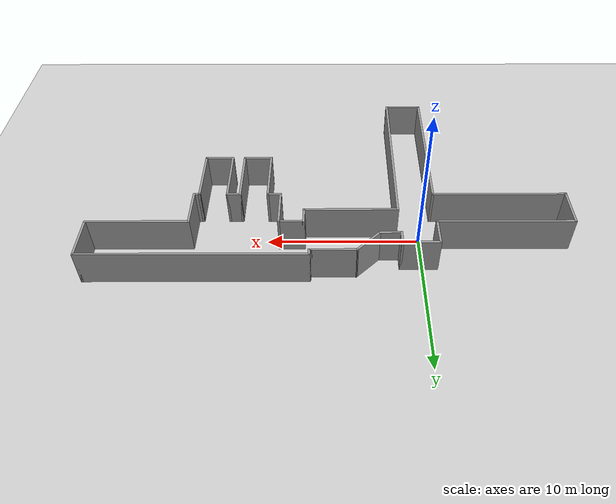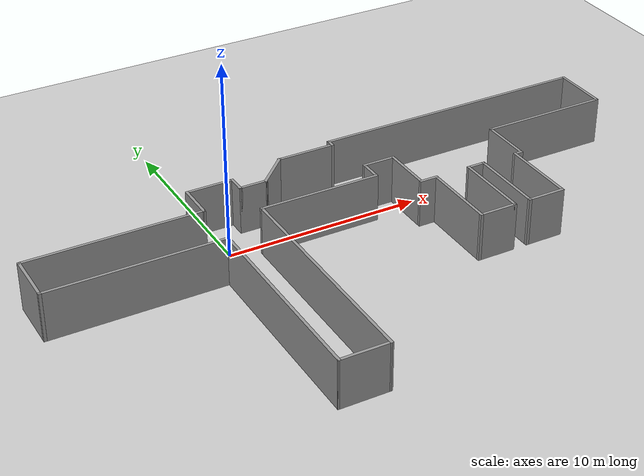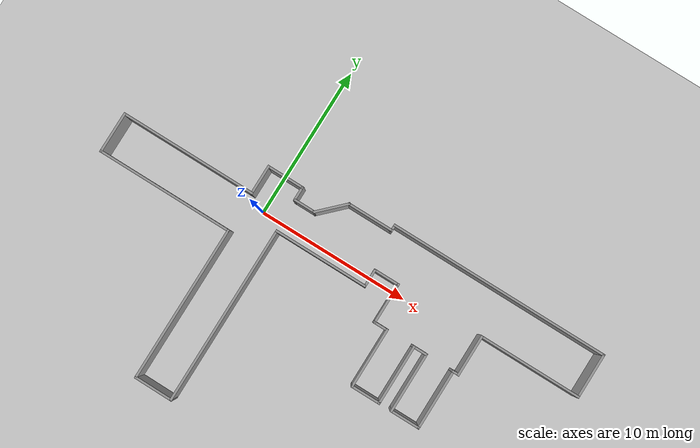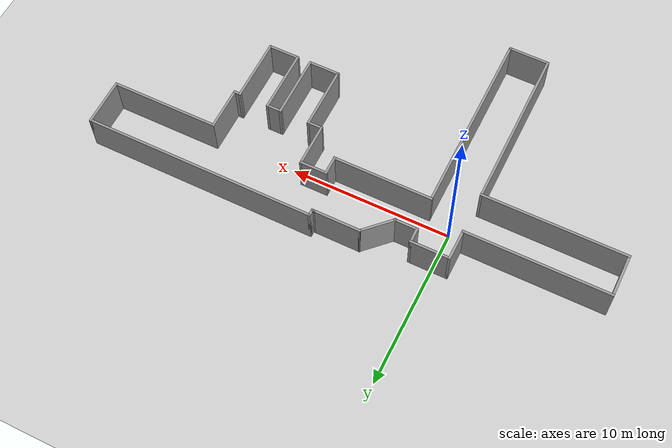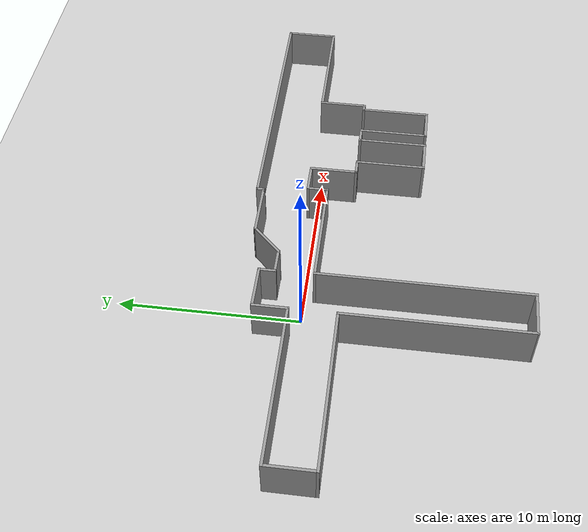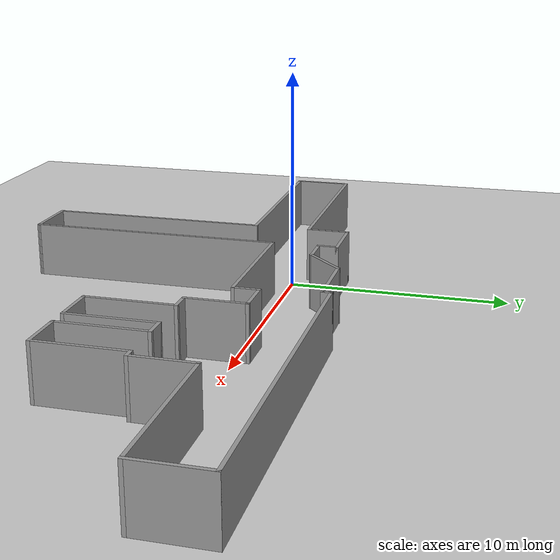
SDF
<sdf version="1.6">
 <world name="default">
  <light name="sun" type="directional">
   <pose>0 0 10 0 -0 0</pose>
   <diffuse>0.8 0.8 0.8 1</diffuse>
   <specular>0.1 0.1 0.1 1</specular>
   <attenuation>
    <range>1000</range>
    <constant>0.9</constant>
    <linear>0.01</linear>
    <quadratic>0.001</quadratic>
   </attenuation>
   <direction>-0.5 0.5 -1</direction>
  </light>
  <model name="ground_plane">
   <static>1</static>
   <link name="link">
    <collision name="collision">
     <geometry><plane><normal>0 0 1</normal><size>100 100</size></plane></geometry>
     <surface><friction><ode><mu>100</mu><mu2>50</mu2></ode></friction></surface>
    </collision>
    <visual name="visual">
     <cast_shadows>0</cast_shadows>
     <geometry><plane><normal>0 0 1</normal><size>100 100</size></plane></geometry>
     <material>
      <script><uri>file://media/materials/scripts/gazebo.material</uri><name>Gazebo/Grey</name></script>
     </material>
    </visual>
   </link>
  </model>
  <gravity>0 0 -9.8</gravity>
  <magnetic_field>6e-06 2.3e-05 -4.2e-05</magnetic_field>
  <atmosphere type="adiabatic"/>
  <physics name="default_physics" default="0" type="ode">
   <max_step_size>0.001</max_step_size>
   <real_time_factor>1</real_time_factor>
   <real_time_update_rate>1000</real_time_update_rate>
  </physics>
  <scene><ambient>0.4 0.4 0.4 1</ambient><background>0.7 0.7 0.7 1</background><shadows>1</shadows></scene>
  <spherical_coordinates>
   <surface_model>EARTH_WGS84</surface_model>
   <latitude_deg>0</latitude_deg>
   <longitude_deg>0</longitude_deg>
   <elevation>0</elevation>
   <heading_deg>0</heading_deg>
  </spherical_coordinates>
  <model name="HospitalHallClosed">
   <pose>5.85571 -4.37407 0 0 -0 0</pose>
   <link name="Wall_0">
    <collision name="Wall_0_Collision">
     <geometry><box><size>10.25 0.15 2.5</size></box></geometry>
     <pose>0 0 1.25 0 -0 0</pose>
    </collision>
    <visual name="Wall_0_Visual">
     <pose>0 0 1.25 0 -0 0</pose>
     <geometry><box><size>10.25 0.15 2.5</size></box></geometry>
     <material>
      <script><uri>file://media/materials/scripts/gazebo.material</uri><name>Gazebo/Grey</name></script>
      <ambient>1 1 1 1</ambient>
     </material>
    </visual>
    <pose>-6.81746 -2.70969 0 0 -0 1.5708</pose>
   </link>
   <link name="Wall_1">
    <collision name="Wall_1_Collision">
     <geometry><box><size>9 0.15 2.5</size></box></geometry>
     <pose>0 0 1.25 0 -0 0</pose>
    </collision>
    <visual name="Wall_1_Visual">
     <pose>0 0 1.25 0 -0 0</pose>
     <geometry><box><size>9 0.15 2.5</size></box></geometry>
     <material>
      <script><uri>file://media/materials/scripts/gazebo.material</uri><name>Gazebo/Grey</name></script>
      <ambient>1 1 1 1</ambient>
     </material>
    </visual>
    <pose>-11.2425 2.34031 0 0 -0 3.14159</pose>
   </link>
   <link name="Wall_10">
    <collision name="Wall_10_Collision">
     <geometry><box><size>0.25 0.15 2.5</size></box></geometry>
     <pose>0 0 1.25 0 -0 0</pose>
    </collision>
    <visual name="Wall_10_Visual">
     <pose>0 0 1.25 0 -0 0</pose>
     <geometry><box><size>0.25 0.15 2.5</size></box></geometry>
     <material>
      <script><uri>file://media/materials/scripts/gazebo.material</uri><name>Gazebo/Grey</name></script>
      <ambient>1 1 1 1</ambient>
     </material>
    </visual>
    <pose>1.26746 7.42523 0 0 -0 0</pose>
   </link>
   <link name="Wall_11">
    <collision name="Wall_11_Collision">
     <geometry><box><size>0.5 0.15 2.5</size></box></geometry>
     <pose>0 0 1.25 0 -0 0</pose>
    </collision>
    <visual name="Wall_11_Visual">
     <pose>0 0 1.25 0 -0 0</pose>
     <geometry><box><size>0.5 0.15 2.5</size></box></geometry>
     <material>
      <script><uri>file://media/materials/scripts/gazebo.material</uri><name>Gazebo/Grey</name></script>
      <ambient>1 1 1 1</ambient>
     </material>
    </visual>
    <pose>1.31746 7.60023 0 0 -0 1.5708</pose>
   </link>
   <link name="Wall_12">
    <collision name="Wall_12_Collision">
     <geometry><box><size>0.15 0.15 2.5</size></box></geometry>
     <pose>0 0 1.25 0 -0 0</pose>
    </collision>
    <visual name="Wall_12_Visual">
     <pose>0 0 1.25 0 -0 0</pose>
     <geometry><box><size>0.15 0.15 2.5</size></box></geometry>
     <material>
      <script><uri>file://media/materials/scripts/gazebo.material</uri><name>Gazebo/Grey</name></script>
      <ambient>1 1 1 1</ambient>
     </material>
    </visual>
    <pose>1.31746 7.77523 0 0 -0 0</pose>
   </link>
   <link name="Wall_13">
    <collision name="Wall_13_Collision">
     <geometry><box><size>14.5 0.15 2.5</size></box></geometry>
     <pose>0 0 1.25 0 -0 0</pose>
    </collision>
    <visual name="Wall_13_Visual">
     <pose>0 0 1.25 0 -0 0</pose>
     <geometry><box><size>14.5 0.15 2.5</size></box></geometry>
     <material>
      <script><uri>file://media/materials/scripts/gazebo.material</uri><name>Gazebo/Grey</name></script>
      <ambient>1 1 1 1</ambient>
     </material>
    </visual>
    <pose>8.49246 7.77523 0 0 -0 0</pose>
   </link>
   <link name="Wall_14">
    <collision name="Wall_14_Collision">
     <geometry><box><size>3 0.15 2.5</size></box></geometry>
     <pose>0 0 1.25 0 -0 0</pose>
    </collision>
    <visual name="Wall_14_Visual">
     <pose>0 0 1.25 0 -0 0</pose>
     <geometry><box><size>3 0.15 2.5</size></box></geometry>
     <material>
      <script><uri>file://media/materials/scripts/gazebo.material</uri><name>Gazebo/Grey</name></script>
      <ambient>1 1 1 1</ambient>
     </material>
    </visual>
    <pose>15.6675 6.35023 0 0 0 -1.5708</pose>
   </link>
   <link name="Wall_15">
    <collision name="Wall_15_Collision">
     <geometry><box><size>6.75 0.15 2.5</size></box></geometry>
     <pose>0 0 1.25 0 -0 0</pose>
    </collision>
    <visual name="Wall_15_Visual">
     <pose>0 0 1.25 0 -0 0</pose>
     <geometry><box><size>6.75 0.15 2.5</size></box></geometry>
     <material>
      <script><uri>file://media/materials/scripts/gazebo.material</uri><name>Gazebo/Grey</name></script>
      <ambient>1 1 1 1</ambient>
     </material>
    </visual>
    <pose>12.3675 4.92523 0 0 -0 3.14159</pose>
   </link>
   <link name="Wall_16">
    <collision name="Wall_16_Collision">
     <geometry><box><size>2.75 0.15 2.5</size></box></geometry>
     <pose>0 0 1.25 0 -0 0</pose>
    </collision>
    <visual name="Wall_16_Visual">
     <pose>0 0 1.25 0 -0 0</pose>
     <geometry><box><size>2.75 0.15 2.5</size></box></geometry>
     <material>
      <script><uri>file://media/materials/scripts/gazebo.material</uri><name>Gazebo/Grey</name></script>
      <ambient>1 1 1 1</ambient>
     </material>
    </visual>
    <pose>9.06746 3.62523 0 0 0 -1.5708</pose>
   </link>
   <link name="Wall_17">
    <collision name="Wall_17_Collision">
     <geometry><box><size>0.5 0.15 2.5</size></box></geometry>
     <pose>0 0 1.25 0 -0 0</pose>
    </collision>
    <visual name="Wall_17_Visual">
     <pose>0 0 1.25 0 -0 0</pose>
     <geometry><box><size>0.5 0.15 2.5</size></box></geometry>
     <material>
      <script><uri>file://media/materials/scripts/gazebo.material</uri><name>Gazebo/Grey</name></script>
      <ambient>1 1 1 1</ambient>
     </material>
    </visual>
    <pose>8.89246 2.32523 0 0 -0 3.14159</pose>
   </link>
   <link name="Wall_2">
    <collision name="Wall_2_Collision">
     <geometry><box><size>2.75 0.15 2.5</size></box></geometry>
     <pose>0 0 1.25 0 -0 0</pose>
    </collision>
    <visual name="Wall_2_Visual">
     <pose>0 0 1.25 0 -0 0</pose>
     <geometry><box><size>2.75 0.15 2.5</size></box></geometry>
     <material>
      <script><uri>file://media/materials/scripts/gazebo.material</uri><name>Gazebo/Grey</name></script>
      <ambient>1 1 1 1</ambient>
     </material>
    </visual>
    <pose>-15.6675 3.64031 0 0 -0 1.5708</pose>
   </link>
   <link name="Wall_21">
    <collision name="Wall_21_Collision">
     <geometry><box><size>1 0.15 2.5</size></box></geometry>
     <pose>0 0 1.25 0 -0 0</pose>
    </collision>
    <visual name="Wall_21_Visual">
     <pose>0 0 1.25 0 -0 0</pose>
     <geometry><box><size>1 0.15 2.5</size></box></geometry>
     <material>
      <script><uri>file://media/materials/scripts/gazebo.material</uri><name>Gazebo/Grey</name></script>
      <ambient>1 1 1 1</ambient>
     </material>
    </visual>
    <pose>6.44246 2.32523 0 0 -0 3.14159</pose>
   </link>
   <link name="Wall_22">
    <collision name="Wall_22_Collision">
     <geometry><box><size>4 0.15 2.5</size></box></geometry>
     <pose>0 0 1.25 0 -0 0</pose>
    </collision>
    <visual name="Wall_22_Visual">
     <pose>0 0 1.25 0 -0 0</pose>
     <geometry><box><size>4 0.15 2.5</size></box></geometry>
     <material>
      <script><uri>file://media/materials/scripts/gazebo.material</uri><name>Gazebo/Grey</name></script>
      <ambient>1 1 1 1</ambient>
     </material>
    </visual>
    <pose>6.01746 0.400231 0 0 0 -1.5708</pose>
   </link>
   <link name="Wall_23">
    <collision name="Wall_23_Collision">
     <geometry><box><size>2 0.15 2.5</size></box></geometry>
     <pose>0 0 1.25 0 -0 0</pose>
    </collision>
    <visual name="Wall_23_Visual">
     <pose>0 0 1.25 0 -0 0</pose>
     <geometry><box><size>2 0.15 2.5</size></box></geometry>
     <material>
      <script><uri>file://media/materials/scripts/gazebo.material</uri><name>Gazebo/Grey</name></script>
      <ambient>1 1 1 1</ambient>
     </material>
    </visual>
    <pose>5.09246 -1.52477 0 0 -0 3.14159</pose>
   </link>
   <link name="Wall_24">
    <collision name="Wall_24_Collision">
     <geometry><box><size>4 0.15 2.5</size></box></geometry>
     <pose>0 0 1.25 0 -0 0</pose>
    </collision>
    <visual name="Wall_24_Visual">
     <pose>0 0 1.25 0 -0 0</pose>
     <geometry><box><size>4 0.15 2.5</size></box></geometry>
     <material>
      <script><uri>file://media/materials/scripts/gazebo.material</uri><name>Gazebo/Grey</name></script>
      <ambient>1 1 1 1</ambient>
     </material>
    </visual>
    <pose>4.16746 0.400231 0 0 -0 1.5708</pose>
   </link>
   <link name="Wall_26">
    <collision name="Wall_26_Collision">
     <geometry><box><size>4 0.15 2.5</size></box></geometry>
     <pose>0 0 1.25 0 -0 0</pose>
    </collision>
    <visual name="Wall_26_Visual">
     <pose>0 0 1.25 0 -0 0</pose>
     <geometry><box><size>4 0.15 2.5</size></box></geometry>
     <material>
      <script><uri>file://media/materials/scripts/gazebo.material</uri><name>Gazebo/Grey</name></script>
      <ambient>1 1 1 1</ambient>
     </material>
    </visual>
    <pose>8.71746 0.400231 0 0 0 -1.5708</pose>
   </link>
   <link name="Wall_27">
    <collision name="Wall_27_Collision">
     <geometry><box><size>2 0.15 2.5</size></box></geometry>
     <pose>0 0 1.25 0 -0 0</pose>
    </collision>
    <visual name="Wall_27_Visual">
     <pose>0 0 1.25 0 -0 0</pose>
     <geometry><box><size>2 0.15 2.5</size></box></geometry>
     <material>
      <script><uri>file://media/materials/scripts/gazebo.material</uri><name>Gazebo/Grey</name></script>
      <ambient>1 1 1 1</ambient>
     </material>
    </visual>
    <pose>7.79246 -1.52477 0 0 -0 3.14159</pose>
   </link>
   <link name="Wall_28">
    <collision name="Wall_28_Collision">
     <geometry><box><size>4 0.15 2.5</size></box></geometry>
     <pose>0 0 1.25 0 -0 0</pose>
    </collision>
    <visual name="Wall_28_Visual">
     <pose>0 0 1.25 0 -0 0</pose>
     <geometry><box><size>4 0.15 2.5</size></box></geometry>
     <material>
      <script><uri>file://media/materials/scripts/gazebo.material</uri><name>Gazebo/Grey</name></script>
      <ambient>1 1 1 1</ambient>
     </material>
    </visual>
    <pose>6.86746 0.400231 0 0 -0 1.5708</pose>
   </link>
   <link name="Wall_3">
    <collision name="Wall_3_Collision">
     <geometry><box><size>9 0.15 2.5</size></box></geometry>
     <pose>0 0 1.25 0 -0 0</pose>
    </collision>
    <visual name="Wall_3_Visual">
     <pose>0 0 1.25 0 -0 0</pose>
     <geometry><box><size>9 0.15 2.5</size></box></geometry>
     <material>
      <script><uri>file://media/materials/scripts/gazebo.material</uri><name>Gazebo/Grey</name></script>
      <ambient>1 1 1 1</ambient>
     </material>
    </visual>
    <pose>-11.2425 4.94031 0 0 -0 0</pose>
   </link>
   <link name="Wall_30">
    <collision name="Wall_30_Collision">
     <geometry><box><size>1 0.15 2.5</size></box></geometry>
     <pose>0 0 1.25 0 -0 0</pose>
    </collision>
    <visual name="Wall_30_Visual">
     <pose>0 0 1.25 0 -0 0</pose>
     <geometry><box><size>1 0.15 2.5</size></box></geometry>
     <material>
      <script><uri>file://media/materials/scripts/gazebo.material</uri><name>Gazebo/Grey</name></script>
      <ambient>1 1 1 1</ambient>
     </material>
    </visual>
    <pose>3.74246 2.32523 0 0 -0 3.14159</pose>
   </link>
   <link name="Wall_31">
    <collision name="Wall_31_Collision">
     <geometry><box><size>2.75 0.15 2.5</size></box></geometry>
     <pose>0 0 1.25 0 -0 0</pose>
    </collision>
    <visual name="Wall_31_Visual">
     <pose>0 0 1.25 0 -0 0</pose>
     <geometry><box><size>2.75 0.15 2.5</size></box></geometry>
     <material>
      <script><uri>file://media/materials/scripts/gazebo.material</uri><name>Gazebo/Grey</name></script>
      <ambient>1 1 1 1</ambient>
     </material>
    </visual>
    <pose>3.31746 3.62523 0 0 -0 1.5708</pose>
   </link>
   <link name="Wall_32">
    <collision name="Wall_32_Collision">
     <geometry><box><size>1.75 0.15 2.5</size></box></geometry>
     <pose>0 0 1.25 0 -0 0</pose>
    </collision>
    <visual name="Wall_32_Visual">
     <pose>0 0 1.25 0 -0 0</pose>
     <geometry><box><size>1.75 0.15 2.5</size></box></geometry>
     <material>
      <script><uri>file://media/materials/scripts/gazebo.material</uri><name>Gazebo/Grey</name></script>
      <ambient>1 1 1 1</ambient>
     </material>
    </visual>
    <pose>2.51746 4.92523 0 0 -0 3.14159</pose>
   </link>
   <link name="Wall_33">
    <collision name="Wall_33_Collision">
     <geometry><box><size>1.25 0.15 2.5</size></box></geometry>
     <pose>0 0 1.25 0 -0 0</pose>
    </collision>
    <visual name="Wall_33_Visual">
     <pose>0 0 1.25 0 -0 0</pose>
     <geometry><box><size>1.25 0.15 2.5</size></box></geometry>
     <material>
      <script><uri>file://media/materials/scripts/gazebo.material</uri><name>Gazebo/Grey</name></script>
      <ambient>1 1 1 1</ambient>
     </material>
    </visual>
    <pose>1.71746 4.37523 0 0 0 -1.5708</pose>
   </link>
   <link name="Wall_34">
    <collision name="Wall_34_Collision">
     <geometry><box><size>6.25 0.15 2.5</size></box></geometry>
     <pose>0 0 1.25 0 -0 0</pose>
    </collision>
    <visual name="Wall_34_Visual">
     <pose>0 0 1.25 0 -0 0</pose>
     <geometry><box><size>6.25 0.15 2.5</size></box></geometry>
     <material>
      <script><uri>file://media/materials/scripts/gazebo.material</uri><name>Gazebo/Grey</name></script>
      <ambient>1 1 1 1</ambient>
     </material>
    </visual>
    <pose>-1.33254 3.82523 0 0 -0 3.14159</pose>
   </link>
   <link name="Wall_35">
    <collision name="Wall_35_Collision">
     <geometry><box><size>11.75 0.15 2.5</size></box></geometry>
     <pose>0 0 1.25 0 -0 0</pose>
    </collision>
    <visual name="Wall_35_Visual">
     <pose>0 0 1.25 0 -0 0</pose>
     <geometry><box><size>11.75 0.15 2.5</size></box></geometry>
     <material>
      <script><uri>file://media/materials/scripts/gazebo.material</uri><name>Gazebo/Grey</name></script>
      <ambient>1 1 1 1</ambient>
     </material>
    </visual>
    <pose>-4.38254 -1.97477 0 0 0 -1.5708</pose>
   </link>
   <link name="Wall_36">
    <collision name="Wall_36_Collision">
     <geometry><box><size>2.58497 0.15 2.5</size></box></geometry>
     <pose>0 0 1.25 0 -0 0</pose>
    </collision>
    <visual name="Wall_36_Visual">
     <pose>0 0 1.25 0 -0 0</pose>
     <geometry><box><size>2.58497 0.15 2.5</size></box></geometry>
     <material>
      <script><uri>file://media/materials/scripts/gazebo.material</uri><name>Gazebo/Grey</name></script>
      <ambient>1 1 1 1</ambient>
     </material>
    </visual>
    <pose>-5.6 -7.76723 0 0 -0 3.1354</pose>
   </link>
   <link name="Wall_4">
    <collision name="Wall_4_Collision">
     <geometry><box><size>2 0.15 2.5</size></box></geometry>
     <pose>0 0 1.25 0 -0 0</pose>
    </collision>
    <visual name="Wall_4_Visual">
     <pose>0 0 1.25 0 -0 0</pose>
     <geometry><box><size>2 0.15 2.5</size></box></geometry>
     <material>
      <script><uri>file://media/materials/scripts/gazebo.material</uri><name>Gazebo/Grey</name></script>
      <ambient>1 1 1 1</ambient>
     </material>
    </visual>
    <pose>-6.81746 5.86531 0 0 -0 1.5708</pose>
   </link>
   <link name="Wall_5">
    <collision name="Wall_5_Collision">
     <geometry><box><size>2.5 0.15 2.5</size></box></geometry>
     <pose>0 0 1.25 0 -0 0</pose>
    </collision>
    <visual name="Wall_5_Visual">
     <pose>0 0 1.25 0 -0 0</pose>
     <geometry><box><size>2.5 0.15 2.5</size></box></geometry>
     <material>
      <script><uri>file://media/materials/scripts/gazebo.material</uri><name>Gazebo/Grey</name></script>
      <ambient>1 1 1 1</ambient>
     </material>
    </visual>
    <pose>-5.64246 6.79031 0 0 -0 0</pose>
   </link>
   <link name="Wall_6">
    <collision name="Wall_6_Collision">
     <geometry><box><size>1 0.15 2.5</size></box></geometry>
     <pose>0 0 1.25 0 -0 0</pose>
    </collision>
    <visual name="Wall_6_Visual">
     <pose>0 0 1.25 0 -0 0</pose>
     <geometry><box><size>1 0.15 2.5</size></box></geometry>
     <material>
      <script><uri>file://media/materials/scripts/gazebo.material</uri><name>Gazebo/Grey</name></script>
      <ambient>1 1 1 1</ambient>
     </material>
    </visual>
    <pose>-4.46746 6.36531 0 0 0 -1.5708</pose>
   </link>
   <link name="Wall_7">
    <collision name="Wall_7_Collision">
     <geometry><box><size>1.5 0.15 2.5</size></box></geometry>
     <pose>0 0 1.25 0 -0 0</pose>
    </collision>
    <visual name="Wall_7_Visual">
     <pose>0 0 1.25 0 -0 0</pose>
     <geometry><box><size>1.5 0.15 2.5</size></box></geometry>
     <material>
      <script><uri>file://media/materials/scripts/gazebo.material</uri><name>Gazebo/Grey</name></script>
      <ambient>1 1 1 1</ambient>
     </material>
    </visual>
    <pose>-3.79246 5.94031 0 0 -0 0</pose>
   </link>
   <link name="Wall_8">
    <collision name="Wall_8_Collision">
     <geometry><box><size>2.25 0.15 2.5</size></box></geometry>
     <pose>0 0 1.25 0 -0 0</pose>
    </collision>
    <visual name="Wall_8_Visual">
     <pose>0 0 1.25 0 -0 0</pose>
     <geometry><box><size>2.25 0.15 2.5</size></box></geometry>
     <material>
      <script><uri>file://media/materials/scripts/gazebo.material</uri><name>Gazebo/Grey</name></script>
      <ambient>1 1 1 1</ambient>
     </material>
    </visual>
    <pose>-2.375 6.68277 0 0 -0 0.785398</pose>
   </link>
   <link name="Wall_9">
    <collision name="Wall_9_Collision">
     <geometry><box><size>3 0.15 2.5</size></box></geometry>
     <pose>0 0 1.25 0 -0 0</pose>
    </collision>
    <visual name="Wall_9_Visual">
     <pose>0 0 1.25 0 -0 0</pose>
     <geometry><box><size>3 0.15 2.5</size></box></geometry>
     <material>
      <script><uri>file://media/materials/scripts/gazebo.material</uri><name>Gazebo/Grey</name></script>
      <ambient>1 1 1 1</ambient>
     </material>
    </visual>
    <pose>-0.207538 7.42523 0 0 -0 0</pose>
   </link>
   <static>1</static>
  </model>
 </world>
</sdf>
